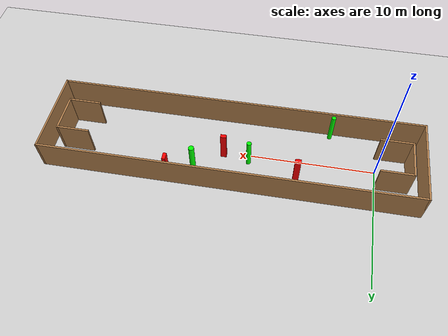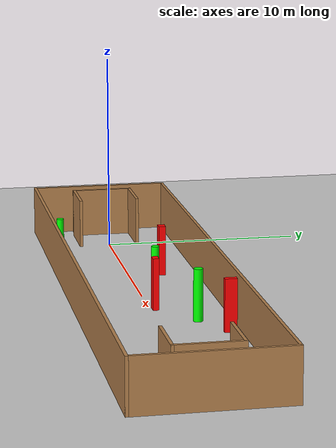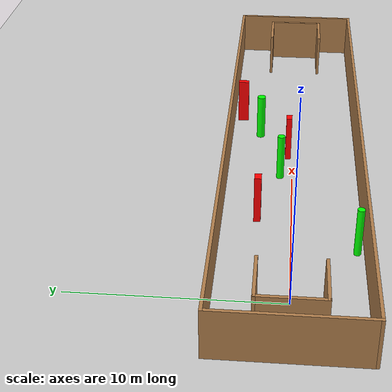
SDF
<sdf version="1.7">
 <world name="default">
  <light name="sun" type="directional">
   <pose>0 0 10 0 -0 0</pose>
   <diffuse>0.8 0.8 0.8 1</diffuse>
   <specular>0.2 0.2 0.2 1</specular>
   <attenuation>
    <range>1000</range>
    <constant>0.9</constant>
    <linear>0.01</linear>
    <quadratic>0.001</quadratic>
   </attenuation>
   <direction>-0.5 0.1 -0.9</direction>
   <spot><inner_angle>0</inner_angle><outer_angle>0</outer_angle><falloff>0</falloff></spot>
  </light>
  <model name="ground_plane">
   <static>1</static>
   <link name="link">
    <collision name="collision">
     <geometry><plane><normal>0 0 1</normal><size>100 100</size></plane></geometry>
     <surface>
      <contact><collide_bitmask>65535</collide_bitmask></contact>
      <friction><ode><mu>100</mu><mu2>50</mu2></ode></friction>
     </surface>
    </collision>
    <visual name="visual">
     <cast_shadows>0</cast_shadows>
     <geometry><plane><normal>0 0 1</normal><size>100 100</size></plane></geometry>
     <material>
      <script><uri>file://media/materials/scripts/gazebo.material</uri><name>Gazebo/Grey</name></script>
     </material>
    </visual>
   </link>
  </model>
  <gravity>0 0 -9.8</gravity>
  <magnetic_field>6e-06 2.3e-05 -4.2e-05</magnetic_field>
  <atmosphere type="adiabatic"/>
  <physics type="ode">
   <max_step_size>0.001</max_step_size>
   <real_time_factor>1</real_time_factor>
   <real_time_update_rate>1000</real_time_update_rate>
  </physics>
  <scene><ambient>0.4 0.4 0.4 1</ambient><background>0.7 0.7 0.7 1</background><shadows>1</shadows></scene>
  <spherical_coordinates>
   <surface_model>EARTH_WGS84</surface_model>
   <latitude_deg>0</latitude_deg>
   <longitude_deg>0</longitude_deg>
   <elevation>0</elevation>
   <heading_deg>0</heading_deg>
  </spherical_coordinates>
  <model name="my_base_walls">
   <link name="Wall_0">
    <collision name="Wall_0_Collision">
     <geometry><box><size>7.15 0.15 2.5</size></box></geometry>
     <pose>0 0 1.25 0 -0 0</pose>
    </collision>
    <visual name="Wall_0_Visual">
     <pose>0 0 1.25 0 -0 0</pose>
     <geometry><box><size>7.15 0.15 2.5</size></box></geometry>
     <material>
      <script><uri>file://media/materials/scripts/gazebo.material</uri><name>Gazebo/Wood</name></script>
      <ambient>1 1 1 1</ambient>
     </material>
     <meta><layer>0</layer></meta>
    </visual>
    <pose>-15 0 0 0 -0 1.5708</pose>
   </link>
   <link name="Wall_10">
    <collision name="Wall_10_Collision">
     <geometry><box><size>2.65 0.15 2.5</size></box></geometry>
     <pose>0 0 1.25 0 -0 0</pose>
    </collision>
    <visual name="Wall_10_Visual">
     <pose>0 0 1.25 0 -0 0</pose>
     <geometry><box><size>2.65 0.15 2.5</size></box></geometry>
     <material>
      <script><uri>file://media/materials/scripts/gazebo.material</uri><name>Gazebo/Wood</name></script>
      <ambient>1 1 1 1</ambient>
     </material>
     <meta><layer>0</layer></meta>
    </visual>
    <pose>-12.75 -1.5 0 0 -0 0</pose>
   </link>
   <link name="Wall_12">
    <collision name="Wall_12_Collision">
     <geometry><box><size>2.65 0.15 2.5</size></box></geometry>
     <pose>0 0 1.25 0 -0 0</pose>
    </collision>
    <visual name="Wall_12_Visual">
     <pose>0 0 1.25 0 -0 0</pose>
     <geometry><box><size>2.65 0.15 2.5</size></box></geometry>
     <material>
      <script><uri>file://media/materials/scripts/gazebo.material</uri><name>Gazebo/Wood</name></script>
      <ambient>1 1 1 1</ambient>
     </material>
     <meta><layer>0</layer></meta>
    </visual>
    <pose>-12.75 1.5 0 0 -0 0</pose>
   </link>
   <link name="Wall_14">
    <collision name="Wall_14_Collision">
     <geometry><box><size>3.15 0.15 2.5</size></box></geometry>
     <pose>0 0 1.25 0 -0 0</pose>
    </collision>
    <visual name="Wall_14_Visual">
     <pose>0 0 1.25 0 -0 0</pose>
     <geometry><box><size>3.15 0.15 2.5</size></box></geometry>
     <material>
      <script><uri>file://media/materials/scripts/gazebo.material</uri><name>Gazebo/Wood</name></script>
      <ambient>1 1 1 1</ambient>
     </material>
     <meta><layer>0</layer></meta>
    </visual>
    <pose>14 0 0 0 -0 -1.5708</pose>
   </link>
   <link name="Wall_15">
    <collision name="Wall_15_Collision">
     <geometry><box><size>2.65 0.15 2.5</size></box></geometry>
     <pose>0 0 1.25 0 -0 0</pose>
    </collision>
    <visual name="Wall_15_Visual">
     <pose>0 0 1.25 0 -0 0</pose>
     <geometry><box><size>2.65 0.15 2.5</size></box></geometry>
     <material>
      <script><uri>file://media/materials/scripts/gazebo.material</uri><name>Gazebo/Wood</name></script>
      <ambient>1 1 1 1</ambient>
     </material>
     <meta><layer>0</layer></meta>
    </visual>
    <pose>12.75 -1.5 0 0 -0 3.14159</pose>
   </link>
   <link name="Wall_17">
    <collision name="Wall_17_Collision">
     <geometry><box><size>2.65 0.15 2.5</size></box></geometry>
     <pose>0 0 1.25 0 -0 0</pose>
    </collision>
    <visual name="Wall_17_Visual">
     <pose>0 0 1.25 0 -0 0</pose>
     <geometry><box><size>2.65 0.15 2.5</size></box></geometry>
     <material>
      <script><uri>file://media/materials/scripts/gazebo.material</uri><name>Gazebo/Wood</name></script>
      <ambient>1 1 1 1</ambient>
     </material>
     <meta><layer>0</layer></meta>
    </visual>
    <pose>12.75 1.5 0 0 -0 3.14159</pose>
   </link>
   <link name="Wall_2">
    <collision name="Wall_2_Collision">
     <geometry><box><size>30.15 0.15 2.5</size></box></geometry>
     <pose>0 0 1.25 0 -0 0</pose>
    </collision>
    <visual name="Wall_2_Visual">
     <pose>0 0 1.25 0 -0 0</pose>
     <geometry><box><size>30.15 0.15 2.5</size></box></geometry>
     <material>
      <script><uri>file://media/materials/scripts/gazebo.material</uri><name>Gazebo/Wood</name></script>
      <ambient>1 1 1 1</ambient>
     </material>
     <meta><layer>0</layer></meta>
    </visual>
    <pose>-0 -3.5 0 0 -0 0</pose>
   </link>
   <link name="Wall_4">
    <collision name="Wall_4_Collision">
     <geometry><box><size>30.15 0.15 2.5</size></box></geometry>
     <pose>0 0 1.25 0 -0 0</pose>
    </collision>
    <visual name="Wall_4_Visual">
     <pose>0 0 1.25 0 -0 0</pose>
     <geometry><box><size>30.15 0.15 2.5</size></box></geometry>
     <material>
      <script><uri>file://media/materials/scripts/gazebo.material</uri><name>Gazebo/Wood</name></script>
      <ambient>1 1 1 1</ambient>
     </material>
     <meta><layer>0</layer></meta>
    </visual>
    <pose>-0 3.5 0 0 -0 0</pose>
   </link>
   <link name="Wall_6">
    <collision name="Wall_6_Collision">
     <geometry><box><size>7.15 0.15 2.5</size></box></geometry>
     <pose>0 0 1.25 0 -0 0</pose>
    </collision>
    <visual name="Wall_6_Visual">
     <pose>0 0 1.25 0 -0 0</pose>
     <geometry><box><size>7.15 0.15 2.5</size></box></geometry>
     <material>
      <script><uri>file://media/materials/scripts/gazebo.material</uri><name>Gazebo/Wood</name></script>
      <ambient>1 1 1 1</ambient>
     </material>
     <meta><layer>0</layer></meta>
    </visual>
    <pose>15 0 0 0 -0 -1.5708</pose>
   </link>
   <link name="Wall_9">
    <collision name="Wall_9_Collision">
     <geometry><box><size>3.15 0.15 2.5</size></box></geometry>
     <pose>0 0 1.25 0 -0 0</pose>
    </collision>
    <visual name="Wall_9_Visual">
     <pose>0 0 1.25 0 -0 0</pose>
     <geometry><box><size>3.15 0.15 2.5</size></box></geometry>
     <material>
      <script><uri>file://media/materials/scripts/gazebo.material</uri><name>Gazebo/Wood</name></script>
      <ambient>1 1 1 1</ambient>
     </material>
     <meta><layer>0</layer></meta>
    </visual>
    <pose>-14 0 0 0 -0 -1.5708</pose>
   </link>
   <static>1</static>
   <pose>11.5 0 0 0 -0 0</pose>
  </model>
  <model name="cylinder1">
   <static>1</static>
   <link name="link">
    <inertial>
     <mass>1</mass>
     <inertia><ixx>0.5</ixx><ixy>0</ixy><ixz>0</ixz><iyy>0.5</iyy><iyz>0</iyz><izz>1</izz></inertia>
    </inertial>
    <collision name="collision">
     <geometry><cylinder><radius>0.1771414960110029</radius><length>2.5</length></cylinder></geometry>
    </collision>
    <visual name="visual">
     <geometry><cylinder><radius>0.1771414960110029</radius><length>2.5</length></cylinder></geometry>
     <material>
      <ambient>0 1 0 1</ambient>
      <diffuse>0 1 0 1</diffuse>
      <specular>0.1 0.1 0.1 1</specular>
      <emissive>0 0 0 0</emissive>
     </material>
    </visual>
   </link>
   <pose>3.8058419706066307 -3.0987980786137763 1.25 0 0 0</pose>
  </model>
  <model name="cylinder2">
   <static>1</static>
   <link name="link">
    <inertial>
     <mass>1</mass>
     <inertia><ixx>0.5</ixx><ixy>0</ixy><ixz>0</ixz><iyy>0.5</iyy><iyz>0</iyz><izz>1</izz></inertia>
    </inertial>
    <collision name="collision">
     <geometry><cylinder><radius>0.18919893862979295</radius><length>2.5</length></cylinder></geometry>
    </collision>
    <visual name="visual">
     <geometry><cylinder><radius>0.18919893862979295</radius><length>2.5</length></cylinder></geometry>
     <material>
      <ambient>0 1 0 1</ambient>
      <diffuse>0 1 0 1</diffuse>
      <specular>0.1 0.1 0.1 1</specular>
      <emissive>0 0 0 0</emissive>
     </material>
    </visual>
   </link>
   <pose>10.170551527207127 0.6410189157780488 1.25 0 0 0</pose>
  </model>
  <model name="cylinder3">
   <static>1</static>
   <link name="link">
    <inertial>
     <mass>1</mass>
     <inertia><ixx>0.5</ixx><ixy>0</ixy><ixz>0</ixz><iyy>0.5</iyy><iyz>0</iyz><izz>1</izz></inertia>
    </inertial>
    <collision name="collision">
     <geometry><cylinder><radius>0.22196412307884067</radius><length>2.5</length></cylinder></geometry>
    </collision>
    <visual name="visual">
     <geometry><cylinder><radius>0.22196412307884067</radius><length>2.5</length></cylinder></geometry>
     <material>
      <ambient>0 1 0 1</ambient>
      <diffuse>0 1 0 1</diffuse>
      <specular>0.1 0.1 0.1 1</specular>
      <emissive>0 0 0 0</emissive>
     </material>
    </visual>
   </link>
   <pose>14.519971738795697 1.8358913214989299 1.25 0 0 0</pose>
  </model>
  <model name="box1">
   <static>1</static>
   <link name="link">
    <inertial>
     <mass>1</mass>
     <inertia><ixx>0.083</ixx><ixy>0</ixy><ixz>0</ixz><iyy>0.083</iyy><iyz>0</iyz><izz>0.083</izz></inertia>
    </inertial>
    <collision name="collision">
     <geometry><box><size>0.4715807263235225 0.34092984940161813 2.5</size></box></geometry>
    </collision>
    <visual name="visual">
     <geometry><box><size>0.4715807263235225 0.34092984940161813 2.5</size></box></geometry>
     <material>
      <ambient>1 0 0 1</ambient>
      <diffuse>1 0 0 1</diffuse>
      <specular>0.1 0.1 0.1 1</specular>
      <emissive>0 0 0 0</emissive>
     </material>
    </visual>
    <sensor name="my_contact" type="contact">
     <contact><collision>box_collision</collision><topic>__default_topic__</topic></contact>
    </sensor>
   </link>
   <pose>6.22453257900227 1.6831310102624588 1.25 0 0 0</pose>
  </model>
  <model name="box2">
   <static>1</static>
   <link name="link">
    <inertial>
     <mass>1</mass>
     <inertia><ixx>0.083</ixx><ixy>0</ixy><ixz>0</ixz><iyy>0.083</iyy><iyz>0</iyz><izz>0.083</izz></inertia>
    </inertial>
    <collision name="collision">
     <geometry><box><size>0.2680779971157058 0.5800159869811583 2.5</size></box></geometry>
    </collision>
    <visual name="visual">
     <geometry><box><size>0.2680779971157058 0.5800159869811583 2.5</size></box></geometry>
     <material>
      <ambient>1 0 0 1</ambient>
      <diffuse>1 0 0 1</diffuse>
      <specular>0.1 0.1 0.1 1</specular>
      <emissive>0 0 0 0</emissive>
     </material>
    </visual>
    <sensor name="my_contact" type="contact">
     <contact><collision>box_collision</collision><topic>__default_topic__</topic></contact>
    </sensor>
   </link>
   <pose>16.400425100365794 2.9255164418278605 1.25 0 0 0</pose>
  </model>
  <model name="box3">
   <static>1</static>
   <link name="link">
    <inertial>
     <mass>1</mass>
     <inertia><ixx>0.083</ixx><ixy>0</ixy><ixz>0</ixz><iyy>0.083</iyy><iyz>0</iyz><izz>0.083</izz></inertia>
    </inertial>
    <collision name="collision">
     <geometry><box><size>0.4621971373281882 0.29772227169095344 2.5</size></box></geometry>
    </collision>
    <visual name="visual">
     <geometry><box><size>0.4621971373281882 0.29772227169095344 2.5</size></box></geometry>
     <material>
      <ambient>1 0 0 1</ambient>
      <diffuse>1 0 0 1</diffuse>
      <specular>0.1 0.1 0.1 1</specular>
      <emissive>0 0 0 0</emissive>
     </material>
    </visual>
    <sensor name="my_contact" type="contact">
     <contact><collision>box_collision</collision><topic>__default_topic__</topic></contact>
    </sensor>
   </link>
   <pose>12.265578732293987 0.2517052106353015 1.25 0 0 0</pose>
  </model>
 </world>
</sdf>
